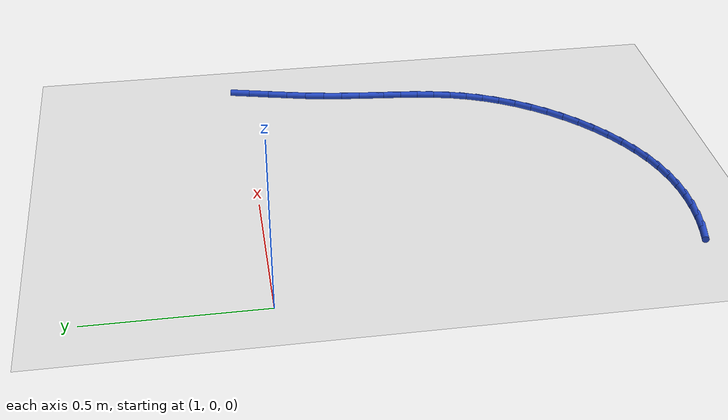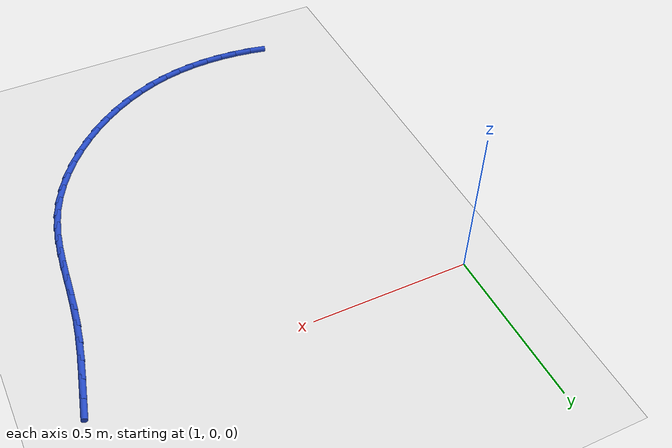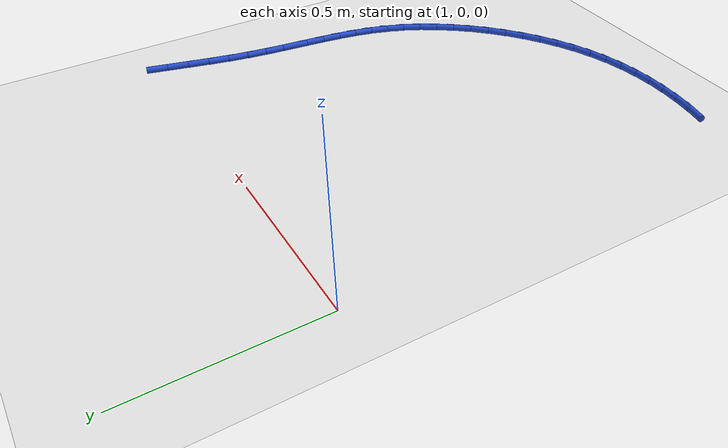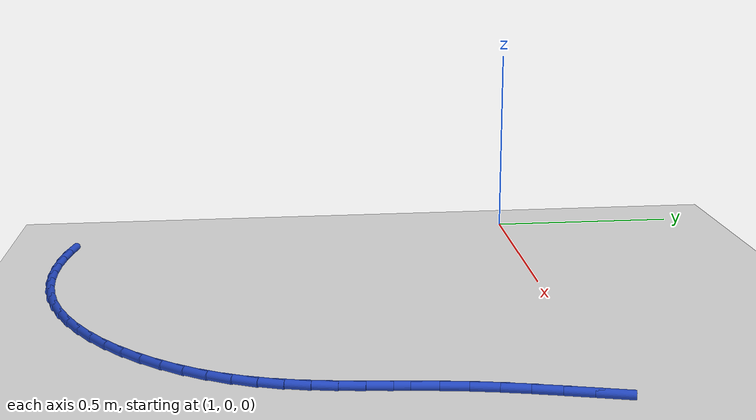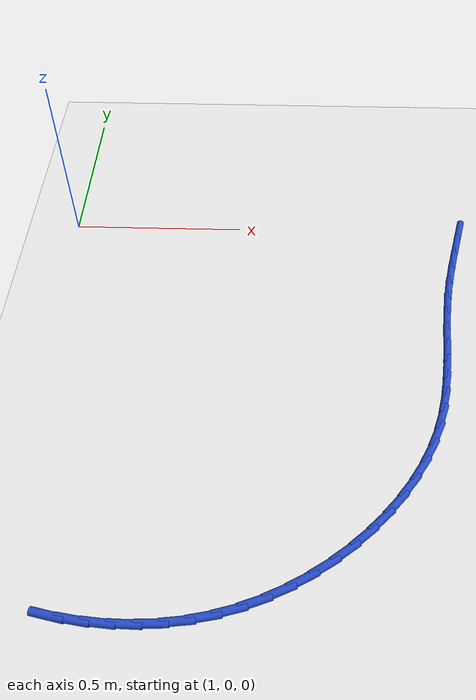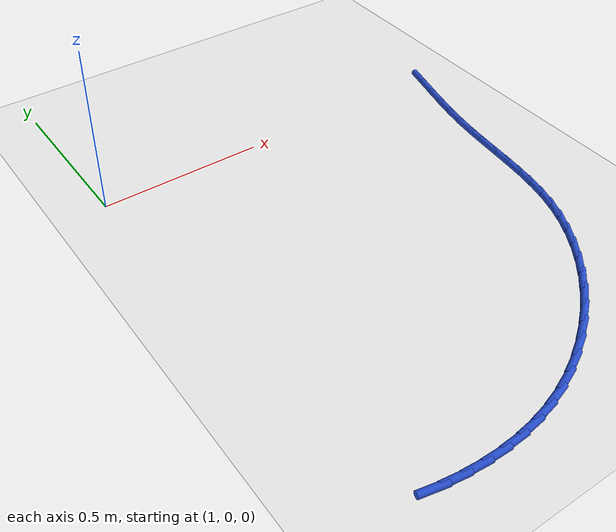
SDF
<sdf version="1.6">
 <world name="default">
  <model name="ground_plane">
   <static>1</static>
   <link name="link">
    <collision name="collision">
     <geometry><plane><normal>0 0 1</normal><size>100 100</size></plane></geometry>
     <surface><friction><ode><mu>100</mu><mu2>50</mu2></ode></friction></surface>
    </collision>
    <visual name="visual">
     <cast_shadows>0</cast_shadows>
     <geometry><plane><normal>0 0 1</normal><size>100 100</size></plane></geometry>
     <material>
      <script><uri>file://media/materials/scripts/gazebo.material</uri><name>Gazebo/WhiteGlow</name></script>
     </material>
    </visual>
   </link>
  </model>
  <model name="line">
   <link name="link_66">
    <pose>2.175371520606421 -0.00016283791809754145 0.01 0 1.57 1.319401681647788</pose>
    <collision name="collision">
     <geometry><cylinder><radius>0.01</radius><length>0.08</length></cylinder></geometry>
    </collision>
    <visual name="visual">
     <material>
      <script><name>Gazebo/Blue</name><uri>file://media/materials/scripts/gazebo.material</uri></script>
     </material>
     <geometry><cylinder><radius>0.01</radius><length>0.08</length></cylinder></geometry>
    </visual>
   </link>
   <link name="link_67">
    <pose>2.159912050198769 -0.06035669839953843 0.01 0 1.57 1.3217411926596958</pose>
    <collision name="collision">
     <geometry><cylinder><radius>0.01</radius><length>0.08</length></cylinder></geometry>
    </collision>
    <visual name="visual">
     <material>
      <script><name>Gazebo/Blue</name><uri>file://media/materials/scripts/gazebo.material</uri></script>
     </material>
     <geometry><cylinder><radius>0.01</radius><length>0.08</length></cylinder></geometry>
    </visual>
   </link>
   <link name="link_68">
    <pose>2.144564790640544 -0.12069922985674941 0.01 0 1.57 1.3359367465409462</pose>
    <collision name="collision">
     <geometry><cylinder><radius>0.01</radius><length>0.08</length></cylinder></geometry>
    </collision>
    <visual name="visual">
     <material>
      <script><name>Gazebo/Blue</name><uri>file://media/materials/scripts/gazebo.material</uri></script>
     </material>
     <geometry><cylinder><radius>0.01</radius><length>0.08</length></cylinder></geometry>
    </visual>
   </link>
   <link name="link_69">
    <pose>2.1301753886365553 -0.1808366767136369 0.01 0 1.57 1.3626085629890594</pose>
    <collision name="collision">
     <geometry><cylinder><radius>0.01</radius><length>0.08</length></cylinder></geometry>
    </collision>
    <visual name="visual">
     <material>
      <script><name>Gazebo/Blue</name><uri>file://media/materials/scripts/gazebo.material</uri></script>
     </material>
     <geometry><cylinder><radius>0.01</radius><length>0.08</length></cylinder></geometry>
    </visual>
   </link>
   <link name="link_70">
    <pose>2.117589490891611 -0.24041528339410723 0.01 0 1.57 1.401696698045448</pose>
    <collision name="collision">
     <geometry><cylinder><radius>0.01</radius><length>0.08</length></cylinder></geometry>
    </collision>
    <visual name="visual">
     <material>
      <script><name>Gazebo/Blue</name><uri>file://media/materials/scripts/gazebo.material</uri></script>
     </material>
     <geometry><cylinder><radius>0.01</radius><length>0.08</length></cylinder></geometry>
    </visual>
   </link>
   <link name="link_71">
    <pose>2.107570455983956 -0.2990987671453836 0.01 0 1.57 1.4380843079264864</pose>
    <collision name="collision">
     <geometry><cylinder><radius>0.01</radius><length>0.08</length></cylinder></geometry>
    </collision>
    <visual name="visual">
     <material>
      <script><name>Gazebo/Blue</name><uri>file://media/materials/scripts/gazebo.material</uri></script>
     </material>
     <geometry><cylinder><radius>0.01</radius><length>0.08</length></cylinder></geometry>
    </visual>
   </link>
   <link name="link_72">
    <pose>2.099872179977609 -0.35676519157174885 0.01 0 1.57 1.460067712366297</pose>
    <collision name="collision">
     <geometry><cylinder><radius>0.01</radius><length>0.08</length></cylinder></geometry>
    </collision>
    <visual name="visual">
     <material>
      <script><name>Gazebo/Blue</name><uri>file://media/materials/scripts/gazebo.material</uri></script>
     </material>
     <geometry><cylinder><radius>0.01</radius><length>0.08</length></cylinder></geometry>
    </visual>
   </link>
   <link name="link_73">
    <pose>2.093571279578666 -0.4134364318217835 0.01 0 1.57 1.4663419267854498</pose>
    <collision name="collision">
     <geometry><cylinder><radius>0.01</radius><length>0.08</length></cylinder></geometry>
    </collision>
    <visual name="visual">
     <material>
      <script><name>Gazebo/Blue</name><uri>file://media/materials/scripts/gazebo.material</uri></script>
     </material>
     <geometry><cylinder><radius>0.01</radius><length>0.08</length></cylinder></geometry>
    </visual>
   </link>
   <link name="link_74">
    <pose>2.087731855073594 -0.46913702074449015 0.01 0 1.57 1.455991368345374</pose>
    <collision name="collision">
     <geometry><cylinder><radius>0.01</radius><length>0.08</length></cylinder></geometry>
    </collision>
    <visual name="visual">
     <material>
      <script><name>Gazebo/Blue</name><uri>file://media/materials/scripts/gazebo.material</uri></script>
     </material>
     <geometry><cylinder><radius>0.01</radius><length>0.08</length></cylinder></geometry>
    </visual>
   </link>
   <link name="link_75">
    <pose>2.0814180067488626 -0.5238914911888721 0.01 0 1.57 1.4282847474789524</pose>
    <collision name="collision">
     <geometry><cylinder><radius>0.01</radius><length>0.08</length></cylinder></geometry>
    </collision>
    <visual name="visual">
     <material>
      <script><name>Gazebo/Blue</name><uri>file://media/materials/scripts/gazebo.material</uri></script>
     </material>
     <geometry><cylinder><radius>0.01</radius><length>0.08</length></cylinder></geometry>
    </visual>
   </link>
   <link name="link_76">
    <pose>2.0736938348909386 -0.5777243760039303 0.01 0 1.57 1.3828048962378714</pose>
    <collision name="collision">
     <geometry><cylinder><radius>0.01</radius><length>0.08</length></cylinder></geometry>
    </collision>
    <visual name="visual">
     <material>
      <script><name>Gazebo/Blue</name><uri>file://media/materials/scripts/gazebo.material</uri></script>
     </material>
     <geometry><cylinder><radius>0.01</radius><length>0.08</length></cylinder></geometry>
    </visual>
   </link>
   <link name="link_77">
    <pose>2.063623439786292 -0.6306602080386684 0.01 0 1.57 1.3197404590995505</pose>
    <collision name="collision">
     <geometry><cylinder><radius>0.01</radius><length>0.08</length></cylinder></geometry>
    </collision>
    <visual name="visual">
     <material>
      <script><name>Gazebo/Blue</name><uri>file://media/materials/scripts/gazebo.material</uri></script>
     </material>
     <geometry><cylinder><radius>0.01</radius><length>0.08</length></cylinder></geometry>
    </visual>
   </link>
   <link name="link_78">
    <pose>2.0502709217213897 -0.6827235201420895 0.01 0 1.57 1.2403950403313035</pose>
    <collision name="collision">
     <geometry><cylinder><radius>0.01</radius><length>0.08</length></cylinder></geometry>
    </collision>
    <visual name="visual">
     <material>
      <script><name>Gazebo/Blue</name><uri>file://media/materials/scripts/gazebo.material</uri></script>
     </material>
     <geometry><cylinder><radius>0.01</radius><length>0.08</length></cylinder></geometry>
    </visual>
   </link>
   <link name="link_79">
    <pose>2.0327059333585344 -0.7339373859818059 0.01 0 1.57 1.153756148714988</pose>
    <collision name="collision">
     <geometry><cylinder><radius>0.01</radius><length>0.08</length></cylinder></geometry>
    </collision>
    <visual name="visual">
     <material>
      <script><name>Gazebo/Blue</name><uri>file://media/materials/scripts/gazebo.material</uri></script>
     </material>
     <geometry><cylinder><radius>0.01</radius><length>0.08</length></cylinder></geometry>
    </visual>
   </link>
   <link name="link_80">
    <pose>2.010433609446956 -0.7842104331980767 0.01 0 1.57 1.0717537656146</pose>
    <collision name="collision">
     <geometry><cylinder><radius>0.01</radius><length>0.08</length></cylinder></geometry>
    </collision>
    <visual name="visual">
     <material>
      <script><name>Gazebo/Blue</name><uri>file://media/materials/scripts/gazebo.material</uri></script>
     </material>
     <geometry><cylinder><radius>0.01</radius><length>0.08</length></cylinder></geometry>
    </visual>
   </link>
   <link name="link_81">
    <pose>1.9837006089693912 -0.8332564145895541 0.01 0 1.57 0.9945561267491652</pose>
    <collision name="collision">
     <geometry><cylinder><radius>0.01</radius><length>0.08</length></cylinder></geometry>
    </collision>
    <visual name="visual">
     <material>
      <script><name>Gazebo/Blue</name><uri>file://media/materials/scripts/gazebo.material</uri></script>
     </material>
     <geometry><cylinder><radius>0.01</radius><length>0.08</length></cylinder></geometry>
    </visual>
   </link>
   <link name="link_82">
    <pose>1.9528258415219577 -0.8807700952722204 0.01 0 1.57 0.9211513634635161</pose>
    <collision name="collision">
     <geometry><cylinder><radius>0.01</radius><length>0.08</length></cylinder></geometry>
    </collision>
    <visual name="visual">
     <material>
      <script><name>Gazebo/Blue</name><uri>file://media/materials/scripts/gazebo.material</uri></script>
     </material>
     <geometry><cylinder><radius>0.01</radius><length>0.08</length></cylinder></geometry>
    </visual>
   </link>
   <link name="link_83">
    <pose>1.9181282167007723 -0.9264462403620575 0.01 0 1.57 0.8505387012142216</pose>
    <collision name="collision">
     <geometry><cylinder><radius>0.01</radius><length>0.08</length></cylinder></geometry>
    </collision>
    <visual name="visual">
     <material>
      <script><name>Gazebo/Blue</name><uri>file://media/materials/scripts/gazebo.material</uri></script>
     </material>
     <geometry><cylinder><radius>0.01</radius><length>0.08</length></cylinder></geometry>
    </visual>
   </link>
   <link name="link_84">
    <pose>1.8799266441019526 -0.9699796149750469 0.01 0 1.57 0.7817455266061829</pose>
    <collision name="collision">
     <geometry><cylinder><radius>0.01</radius><length>0.08</length></cylinder></geometry>
    </collision>
    <visual name="visual">
     <material>
      <script><name>Gazebo/Blue</name><uri>file://media/materials/scripts/gazebo.material</uri></script>
     </material>
     <geometry><cylinder><radius>0.01</radius><length>0.08</length></cylinder></geometry>
    </visual>
   </link>
   <link name="link_85">
    <pose>1.8385400333216158 -1.0110649842271706 0.01 0 1.57 0.7138293834517004</pose>
    <collision name="collision">
     <geometry><cylinder><radius>0.01</radius><length>0.08</length></cylinder></geometry>
    </collision>
    <visual name="visual">
     <material>
      <script><name>Gazebo/Blue</name><uri>file://media/materials/scripts/gazebo.material</uri></script>
     </material>
     <geometry><cylinder><radius>0.01</radius><length>0.08</length></cylinder></geometry>
    </visual>
   </link>
   <link name="link_86">
    <pose>1.7942872939558774 -1.0493971132344118 0.01 0 1.57 0.6458720638865809</pose>
    <collision name="collision">
     <geometry><cylinder><radius>0.01</radius><length>0.08</length></cylinder></geometry>
    </collision>
    <visual name="visual">
     <material>
      <script><name>Gazebo/Blue</name><uri>file://media/materials/scripts/gazebo.material</uri></script>
     </material>
     <geometry><cylinder><radius>0.01</radius><length>0.08</length></cylinder></geometry>
    </visual>
   </link>
   <link name="link_87">
    <pose>1.7474873356008556 -1.0846707671127505 0.01 0 1.57 0.5769710351862322</pose>
    <collision name="collision">
     <geometry><cylinder><radius>0.01</radius><length>0.08</length></cylinder></geometry>
    </collision>
    <visual name="visual">
     <material>
      <script><name>Gazebo/Blue</name><uri>file://media/materials/scripts/gazebo.material</uri></script>
     </material>
     <geometry><cylinder><radius>0.01</radius><length>0.08</length></cylinder></geometry>
    </visual>
   </link>
   <link name="link_88">
    <pose>1.698459067852667 -1.1165807109781698 0.01 0 1.57 0.5062324123817099</pose>
    <collision name="collision">
     <geometry><cylinder><radius>0.01</radius><length>0.08</length></cylinder></geometry>
    </collision>
    <visual name="visual">
     <material>
      <script><name>Gazebo/Blue</name><uri>file://media/materials/scripts/gazebo.material</uri></script>
     </material>
     <geometry><cylinder><radius>0.01</radius><length>0.08</length></cylinder></geometry>
    </visual>
   </link>
   <link name="link_89">
    <pose>1.647521400307428 -1.1448217099466516 0.01 0 1.57 0.43276953163336185</pose>
    <collision name="collision">
     <geometry><cylinder><radius>0.01</radius><length>0.08</length></cylinder></geometry>
    </collision>
    <visual name="visual">
     <material>
      <script><name>Gazebo/Blue</name><uri>file://media/materials/scripts/gazebo.material</uri></script>
     </material>
     <geometry><cylinder><radius>0.01</radius><length>0.08</length></cylinder></geometry>
    </visual>
   </link>
   <link name="link_90">
    <pose>1.5949932425612565 -1.1690885291341777 0.01 0 1.57 0.35571174656985843</pose>
    <collision name="collision">
     <geometry><cylinder><radius>0.01</radius><length>0.08</length></cylinder></geometry>
    </collision>
    <visual name="visual">
     <material>
      <script><name>Gazebo/Blue</name><uri>file://media/materials/scripts/gazebo.material</uri></script>
     </material>
     <geometry><cylinder><radius>0.01</radius><length>0.08</length></cylinder></geometry>
    </visual>
   </link>
   <link name="link_91">
    <pose>1.5411935042102678 -1.1890759336567303 0.01 0 1.57 0.27464503932231377</pose>
    <collision name="collision">
     <geometry><cylinder><radius>0.01</radius><length>0.08</length></cylinder></geometry>
    </collision>
    <visual name="visual">
     <material>
      <script><name>Gazebo/Blue</name><uri>file://media/materials/scripts/gazebo.material</uri></script>
     </material>
     <geometry><cylinder><radius>0.01</radius><length>0.08</length></cylinder></geometry>
    </visual>
   </link>
   <link name="link_92">
    <pose>1.486436430882887 -1.204504584266736 0.01 0 1.57 0.19404955833813353</pose>
    <collision name="collision">
     <geometry><cylinder><radius>0.01</radius><length>0.08</length></cylinder></geometry>
    </collision>
    <visual name="visual">
     <material>
      <script><name>Gazebo/Blue</name><uri>file://media/materials/scripts/gazebo.material</uri></script>
     </material>
     <geometry><cylinder><radius>0.01</radius><length>0.08</length></cylinder></geometry>
    </visual>
   </link>
   <link name="link_93">
    <pose>1.430980847528796 -1.2154028526276415 0.01 0 1.57 0.1174227780125942</pose>
    <collision name="collision">
     <geometry><cylinder><radius>0.01</radius><length>0.08</length></cylinder></geometry>
    </collision>
    <visual name="visual">
     <material>
      <script><name>Gazebo/Blue</name><uri>file://media/materials/scripts/gazebo.material</uri></script>
     </material>
     <geometry><cylinder><radius>0.01</radius><length>0.08</length></cylinder></geometry>
    </visual>
   </link>
   <link name="link_94">
    <pose>1.3750492446369518 -1.2220008493614427 0.01 0 1.57 0.04502270188231381</pose>
    <collision name="collision">
     <geometry><cylinder><radius>0.01</radius><length>0.08</length></cylinder></geometry>
    </collision>
    <visual name="visual">
     <material>
      <script><name>Gazebo/Blue</name><uri>file://media/materials/scripts/gazebo.material</uri></script>
     </material>
     <geometry><cylinder><radius>0.01</radius><length>0.08</length></cylinder></geometry>
    </visual>
   </link>
   <link name="link_95">
    <pose>1.3188634805607564 -1.2245321948813046 0.01 0 1.57 -0.02315007983121458</pose>
    <collision name="collision">
     <geometry><cylinder><radius>0.01</radius><length>0.08</length></cylinder></geometry>
    </collision>
    <visual name="visual">
     <material>
      <script><name>Gazebo/Blue</name><uri>file://media/materials/scripts/gazebo.material</uri></script>
     </material>
     <geometry><cylinder><radius>0.01</radius><length>0.08</length></cylinder></geometry>
    </visual>
   </link>
   <link name="link_96">
    <pose>1.2626454136536083 -1.223230509600392 0.01 0 1.57 -0.08725293181009448</pose>
    <collision name="collision">
     <geometry><cylinder><radius>0.01</radius><length>0.08</length></cylinder></geometry>
    </collision>
    <visual name="visual">
     <material>
      <script><name>Gazebo/Blue</name><uri>file://media/materials/scripts/gazebo.material</uri></script>
     </material>
     <geometry><cylinder><radius>0.01</radius><length>0.08</length></cylinder></geometry>
    </visual>
   </link>
   <link name="link_97">
    <pose>1.2066169022689062 -1.2183294139318692 0.01 0 1.57 -0.1475589107070751</pose>
    <collision name="collision">
     <geometry><cylinder><radius>0.01</radius><length>0.08</length></cylinder></geometry>
    </collision>
    <visual name="visual">
     <material>
      <script><name>Gazebo/Blue</name><uri>file://media/materials/scripts/gazebo.material</uri></script>
     </material>
     <geometry><cylinder><radius>0.01</radius><length>0.08</length></cylinder></geometry>
    </visual>
   </link>
   <link name="link_98">
    <pose>1.1509998047600496 -1.210062528288902 0.01 0 1.57 -0.2044206731012047</pose>
    <collision name="collision">
     <geometry><cylinder><radius>0.01</radius><length>0.08</length></cylinder></geometry>
    </collision>
    <visual name="visual">
     <material>
      <script><name>Gazebo/Blue</name><uri>file://media/materials/scripts/gazebo.material</uri></script>
     </material>
     <geometry><cylinder><radius>0.01</radius><length>0.08</length></cylinder></geometry>
    </visual>
   </link>
  </model>
 </world>
</sdf>
